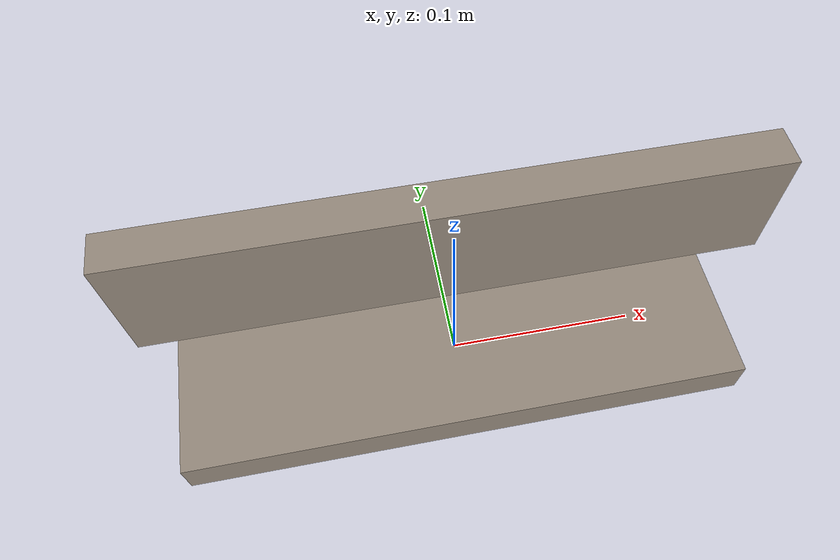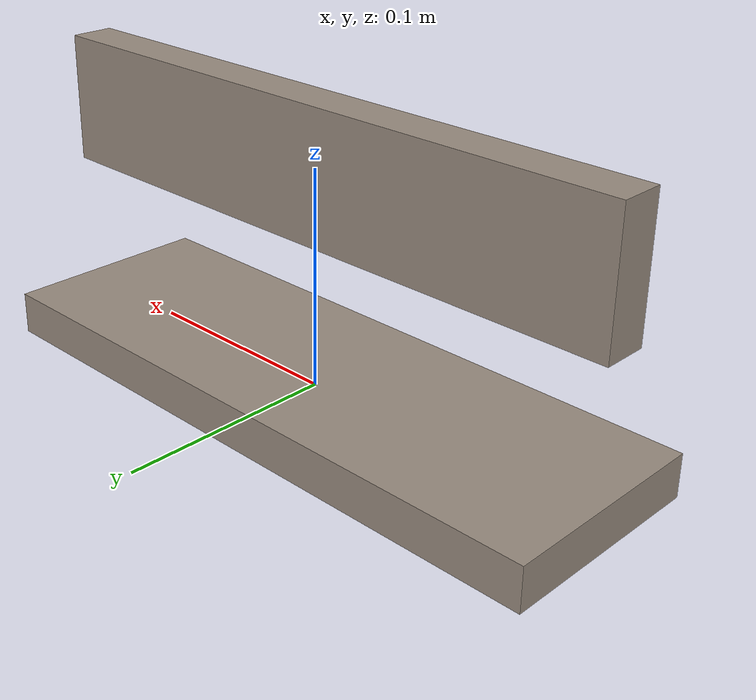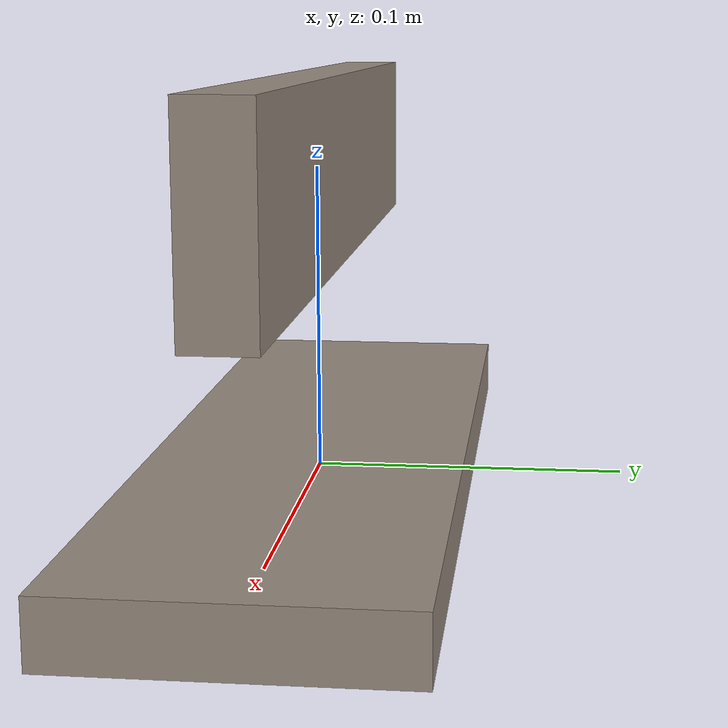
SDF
<sdf version="1.6">
    <model name="coat_rack1">
        <allow_auto_disable>true</allow_auto_disable>
        <link name="link_1">
            <kinematic>1</kinematic>
            <inertial>
                <pose>0 0 -0.15 0 0 0</pose>
                <inertia>
                    <ixx>0.00541667</ixx>
                    <iyy>0.05208333</iyy>
                    <izz>0.04708333</izz>
                </inertia>
                <mass>1</mass>
            </inertial>
            <visual name="visual1">
                <geometry>
                    <box>
                        <size>0.3 0.1 0.02</size>
                    </box>
                </geometry>
                <material>
                    <ambient>0.6 0.55 0.5 1.0</ambient>
                    <diffuse>0.6 0.55 0.5 1.0</diffuse>
                </material>
            </visual>
            <visual name="visual2">
                <pose>0 0 0.1 0 0 0 0</pose>
                <geometry>
                    <box>
                        <size>0.3 0.02 0.06</size>
                    </box>
                </geometry>
                <material>
                    <ambient>0.6 0.55 0.5 1.0</ambient>
                    <diffuse>0.6 0.55 0.5 1.0</diffuse>
                </material>
            </visual>
            <collision name="collision1">
                <geometry>
                    <box>
                        <size>0.3 0.1 0.02</size>
                    </box>
                </geometry>
                <surface>
                    <friction>
                        <ode>
                            <mu>1.0</mu>
                            <mu2>1.0</mu2>
                        </ode>
                    </friction>
                    <contact>
                        <ode>
                            <kp>1e15</kp>
                            <kd>1e12</kd>
                        </ode>
                    </contact>
                </surface>
            </collision>
            <collision name="collision2">
                <pose>0 0 0.1 0 0 0 0</pose>
                <geometry>
                    <box>
                        <size>0.3 0.02 0.06</size>
                    </box>
                </geometry>
                <surface>
                    <friction>
                        <ode>
                            <mu>1.0</mu>
                            <mu2>1.0</mu2>
                        </ode>
                    </friction>
                    <contact>
                        <ode>
                            <kp>1e15</kp>
                            <kd>1e12</kd>
                        </ode>
                    </contact>
                </surface>
            </collision>
        </link>
    </model>
</sdf>
